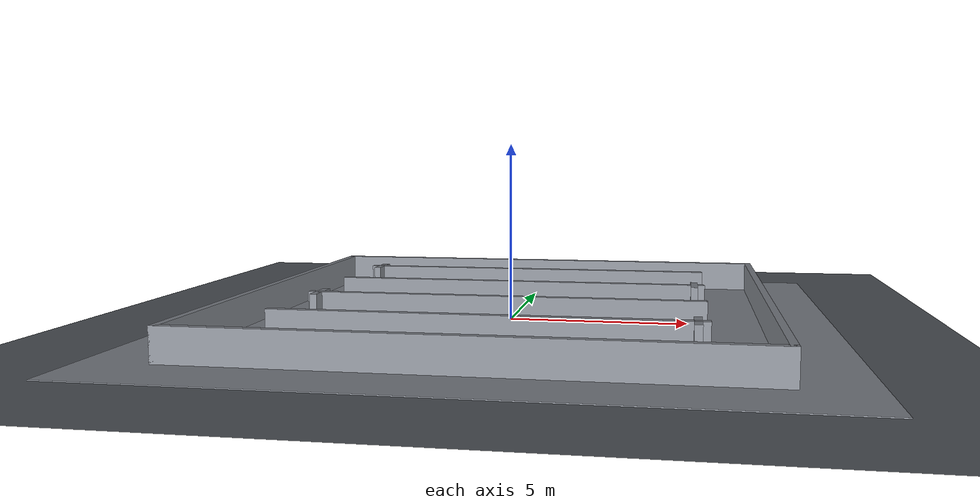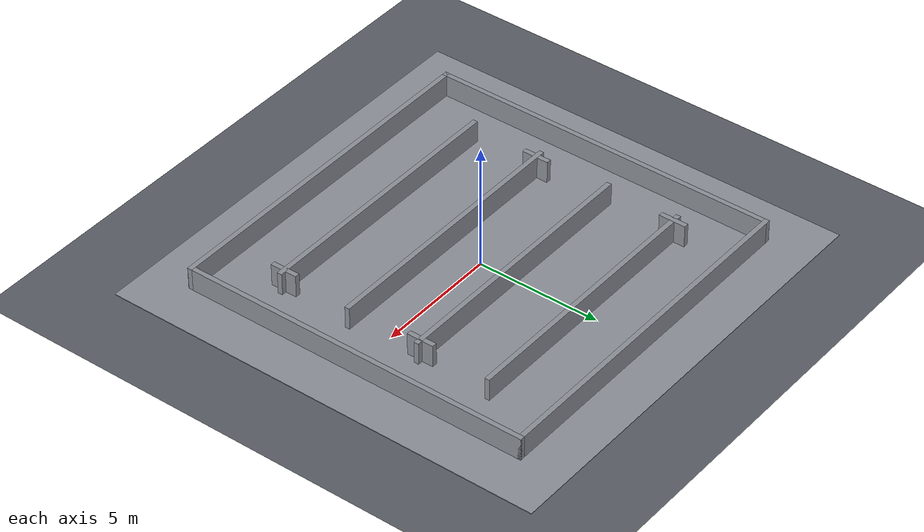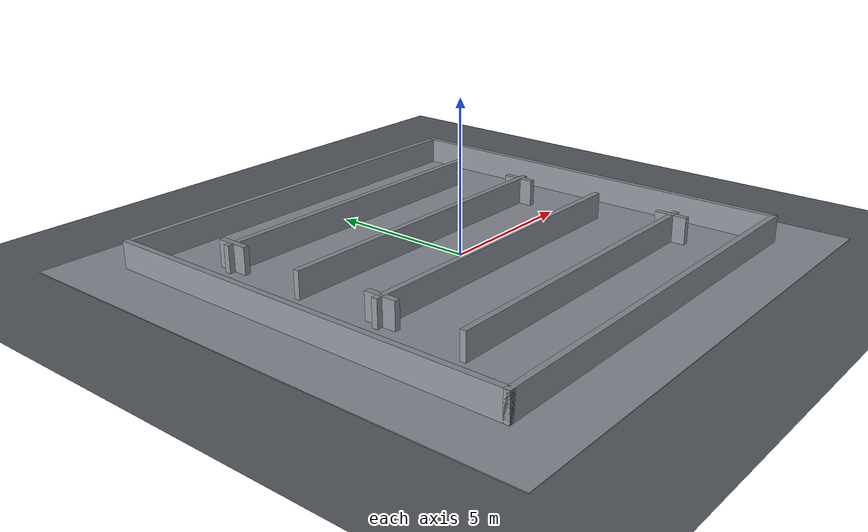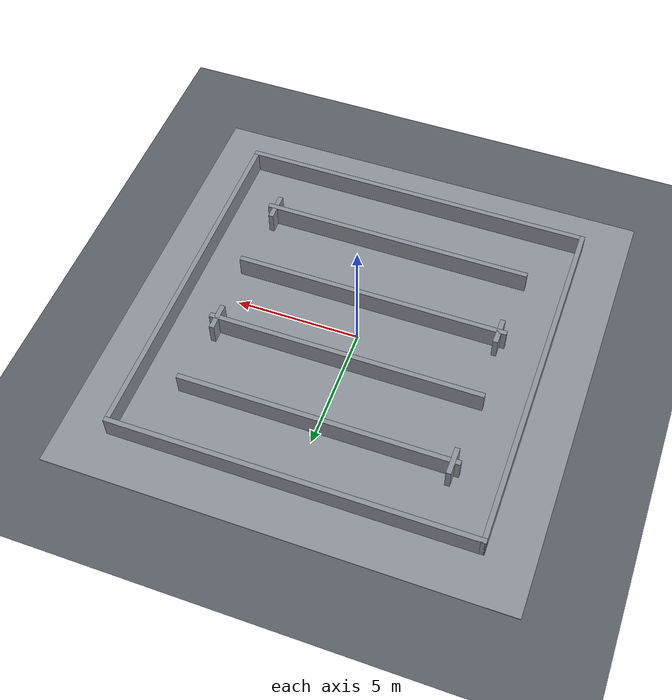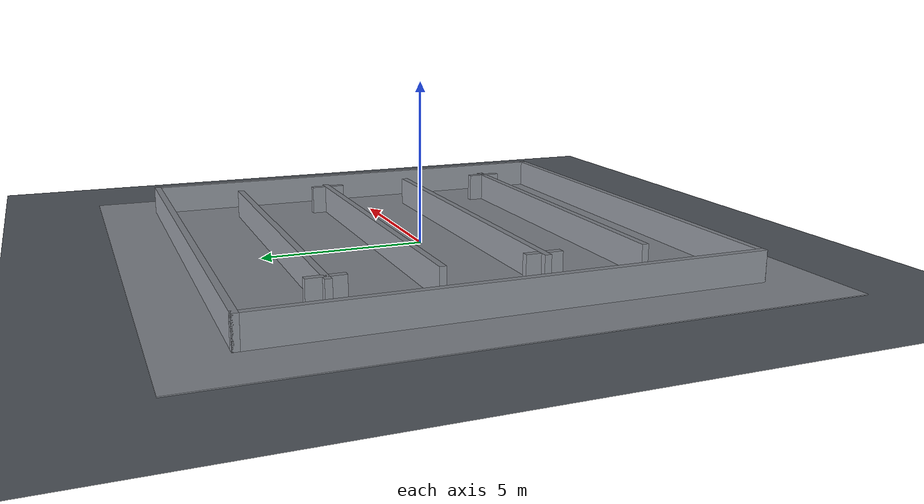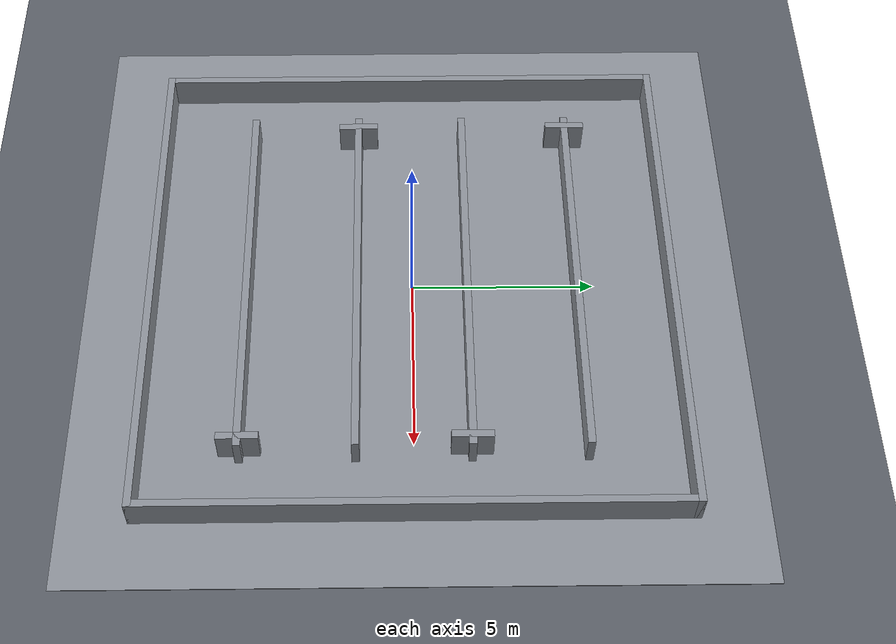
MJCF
<!-- Generated by robot_lab_maps/tools/gen_mjcf_worlds.py from
     maps/nav_narrow_passage/worlds/nav_narrow_passage.world - do not edit by hand. -->
<mujoco model="nav_narrow_passage">
  <option gravity="0 0 -9.81" />
  <compiler angle="radian" />
  <worldbody>
    <geom type="plane" size="100 100 0.1" contype="0" conaffinity="0" rgba="0.35 0.37 0.4 1" />
    <geom pos="0 0 -0.05" quat="1 0 0 0" rgba="0.55 0.57 0.6 1" type="box" size="9 9 0.05" />
    <geom pos="0 -7.1 0" quat="1 0 0 0" rgba="0.55 0.57 0.6 1" type="box" size="7.2 0.1 0.9" />
    <geom pos="0 7.1 0" quat="1 0 0 0" rgba="0.55 0.57 0.6 1" type="box" size="7.2 0.1 0.9" />
    <geom pos="-7.1 0 0" quat="1 0 0 0" rgba="0.55 0.57 0.6 1" type="box" size="0.1 7.2 0.9" />
    <geom pos="7.1 0 0" quat="1 0 0 0" rgba="0.55 0.57 0.6 1" type="box" size="0.1 7.2 0.9" />
    <geom pos="0 -4.5 0" quat="1 0 0 0" rgba="0.55 0.57 0.6 1" type="box" size="5.5 0.1 0.9" />
    <geom pos="0 -1.5 0" quat="1 0 0 0" rgba="0.55 0.57 0.6 1" type="box" size="5.5 0.1 0.9" />
    <geom pos="0 1.5 0" quat="1 0 0 0" rgba="0.55 0.57 0.6 1" type="box" size="5.5 0.1 0.9" />
    <geom pos="0 4.5 0" quat="1 0 0 0" rgba="0.55 0.57 0.6 1" type="box" size="5.5 0.1 0.9" />
    <geom pos="5.2 -4.5 0" quat="1 0 0 0" rgba="0.55 0.57 0.6 1" type="box" size="0.1 0.55 0.9" />
    <geom pos="-5.2 -1.5 0" quat="1 0 0 0" rgba="0.55 0.57 0.6 1" type="box" size="0.1 0.55 0.9" />
    <geom pos="5.2 1.5 0" quat="1 0 0 0" rgba="0.55 0.57 0.6 1" type="box" size="0.1 0.55 0.9" />
    <geom pos="-5.2 4.5 0" quat="1 0 0 0" rgba="0.55 0.57 0.6 1" type="box" size="0.1 0.55 0.9" />
    <light diffuse="0.8 0.8 0.8" pos="0 0 10" dir="0 0 -1" castshadow="true" />
    <light diffuse="0.3 0.3 0.3" pos="0 -6 6" dir="0 1 -1" />
  </worldbody>
</mujoco>
